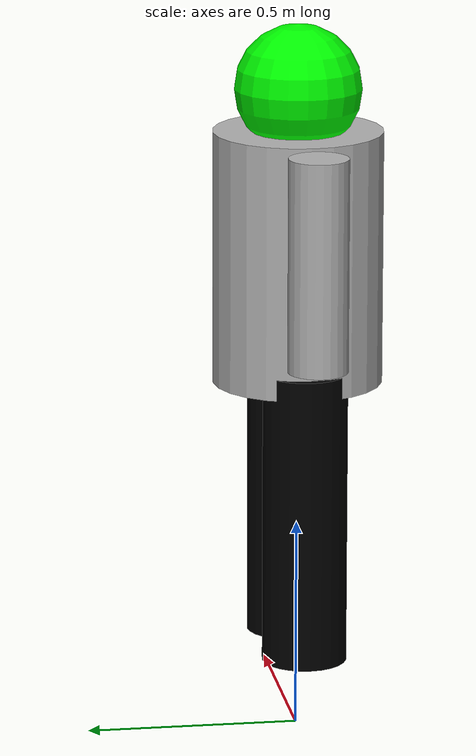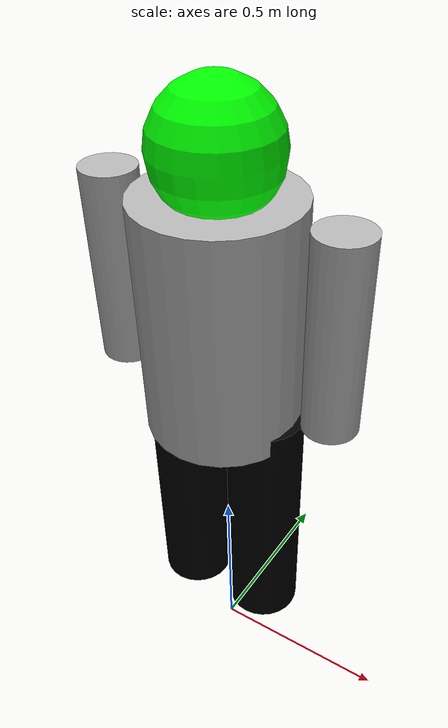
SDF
<?xml version="1.0"?>
<sdf version="1.6">
  <model name="simple_person">
    <static>true</static>

    <link name="person_link">

      <!-- HEAD (green sphere) -->
      <visual name="head">
        <geometry>
          <sphere>
            <radius>0.15</radius>
          </sphere>
        </geometry>
        <pose>0 0 1.55 0 0 0</pose>
        <material>
          <ambient>0 1 0 1</ambient>
          <diffuse>0 1 0 1</diffuse>
          <emissive>0 0.8 0 1</emissive>
        </material>
      </visual>

      <!-- TORSO (gray cylinder) -->
      <visual name="torso">
        <geometry>
          <cylinder>
            <radius>0.20</radius>
            <length>0.60</length>
          </cylinder>
        </geometry>
        <pose>0 0 1.15 0 0 0</pose>
        <material>
          <ambient>0.7 0.7 0.7 1</ambient>
          <diffuse>0.7 0.7 0.7 1</diffuse>
        </material>
      </visual>

      <!-- LEFT ARM -->
      <visual name="arm_left">
        <geometry>
          <cylinder>
            <radius>0.07</radius>
            <length>0.50</length>
          </cylinder>
        </geometry>
        <pose>-0.30 0 1.20 0 0 1.57</pose>
        <material>
          <ambient>0.7 0.7 0.7 1</ambient>
          <diffuse>0.7 0.7 0.7 1</diffuse>
        </material>
      </visual>

      <!-- RIGHT ARM -->
      <visual name="arm_right">
        <geometry>
          <cylinder>
            <radius>0.07</radius>
            <length>0.50</length>
          </cylinder>
        </geometry>
        <pose>0.30 0 1.20 0 0 1.57</pose>
        <material>
          <ambient>0.7 0.7 0.7 1</ambient>
          <diffuse>0.7 0.7 0.7 1</diffuse>
        </material>
      </visual>

      <!-- LEGS (black cylinders) -->
      <visual name="left_leg">
        <geometry>
          <cylinder>
            <radius>0.10</radius>
            <length>0.70</length>
          </cylinder>
        </geometry>
        <pose>-0.12 0 0.55 0 0 0</pose>
        <material>
          <ambient>0 0 0 1</ambient>
          <diffuse>0 0 0 1</diffuse>
        </material>
      </visual>

      <visual name="right_leg">
        <geometry>
          <cylinder>
            <radius>0.10</radius>
            <length>0.70</length>
          </cylinder>
        </geometry>
        <pose>0.12 0 0.55 0 0 0</pose>
        <material>
          <ambient>0 0 0 1</ambient>
          <diffuse>0 0 0 1</diffuse>
        </material>
      </visual>

    </link>
  </model>
</sdf>
